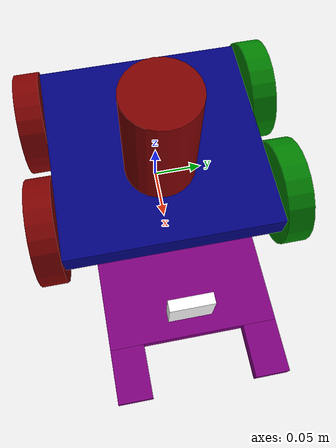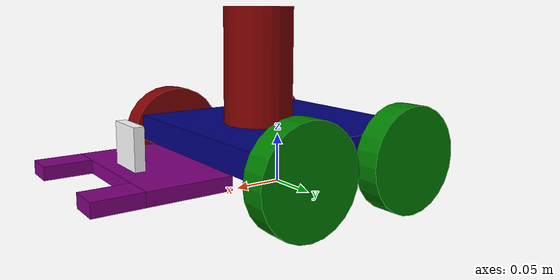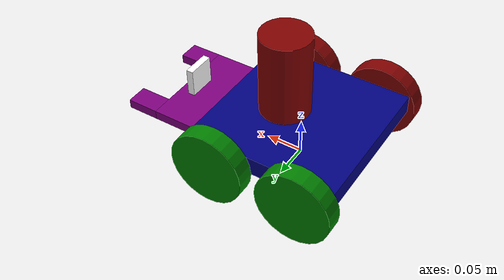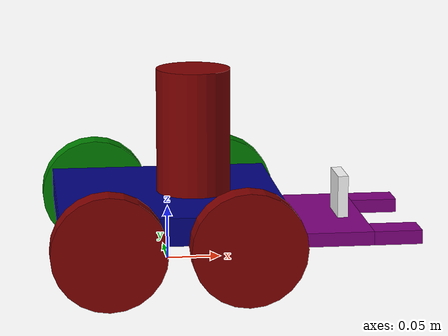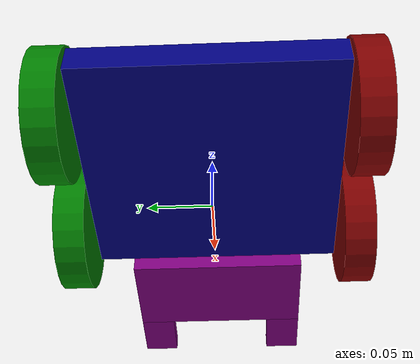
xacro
<?xml version="1.0"?>
<robot name="fetchbot" xmlns:xacro="http://www.ros.org/wiki/xacro">

    <xacro:include filename="common_properties.xacro" />
    <xacro:include filename="mobile_base.xacro" />
    <xacro:include filename="ros2_control_gazebo.xacro" />
    <xacro:include filename="lidar.xacro" />
    <xacro:include filename="claw.xacro" />
    <xacro:include filename="camera.xacro" />

</robot>

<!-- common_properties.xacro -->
<robot xmlns:xacro="http://www.ros.org/wiki/xacro">

    <xacro:property name="alpha" value="1" />

   <material name="white">
        <color rgba="1 1 1 ${alpha}"/>
    </material>

    <material name="red">
        <color rgba="0.5 0 0 ${alpha}"/>
    </material>

    <material name="green">
        <color rgba="0 0.5 0 ${alpha}"/>
    </material>

    <material name="blue">
        <color rgba="0 0 0.5 ${alpha}"/>
    </material>

    <material name="grey">
        <color rgba="0.5 0.5 0.5 ${alpha}"/>
    </material>

    <material name="purple">
        <color rgba="0.5 0 0.5 ${alpha}"/>
    </material>

    <xacro:macro name="box_inertia" params="m l w h xyz rpy">
        <inertial>
            <origin xyz="${xyz}" rpy="${rpy}" />
            <mass value="${m}" />
            <inertia ixx="${(m/12) * (h*h + l*l)}" ixy="0" ixz="0"
                     iyy="${(m/12) * (w*w + l*l)}" iyz="0"
                     izz="${(m/12) * (w*w + h*h)}" />
        </inertial>
    </xacro:macro>

    <xacro:macro name="cylinder_inertia" params="m r h xyz rpy">
        <inertial>
            <origin xyz="${xyz}" rpy="${rpy}" />
            <mass value="${m}" />
            <inertia ixx="${(m/12) * (3*r*r + h*h)}" ixy="0" ixz="0"
                     iyy="${(m/12) * (3*r*r + h*h)}" iyz="0"
                     izz="${(m/2) * (r*r)}" />
        </inertial>
    </xacro:macro>

    <xacro:macro name="sphere_inertia" params="m r xyz rpy">
        <inertial>
            <origin xyz="${xyz}" rpy="${rpy}" />
            <mass value="${m}" />
            <inertia ixx="${(2/5) * m * r * r}" ixy="0" ixz="0"
                     iyy="${(2/5) * m * r * r}" iyz="0"
                     izz="${(2/5) * m * r * r}" />
        </inertial>
    </xacro:macro>

</robot>

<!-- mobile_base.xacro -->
<robot xmlns:xacro="http://www.ros.org/wiki/xacro">

    <xacro:property name="base_length" value="0.21" />
    <xacro:property name="base_width" value="0.21" />
    <xacro:property name="base_height" value="0.026" />
    <xacro:property name="wheel_length" value="0.025" />
    <xacro:property name="wheel_radius" value="0.0525" />
    <xacro:property name="wheel_separation" value="0.125" />
    <xacro:property name="wheel_mass" value="2.0" />
    <xacro:property name="base_mass" value="10.0" />

    <link name="base_footprint"/>

    <link name="base_link">
        <visual>
            <geometry>
                <box size="${base_length} ${base_width} ${base_height}"/>
            </geometry>
            <origin xyz="0 0 ${base_height / 2.0}" rpy="0 0 0"/>
            <material name="blue"/>
        </visual>
        <collision>
            <geometry>
                <box size="${base_length} ${base_width} ${base_height}"/>
            </geometry>
            <origin xyz="0 0 ${base_height / 2.0}" rpy="0 0 0"/>
        </collision>
        <xacro:box_inertia m="${base_mass}" l="${base_length}" w="${base_width}" h="${base_height}"
                           xyz="0 0 ${base_height / 2.0}" rpy="0 0 0" />
    </link>

    <xacro:macro name="wheel_link" params="prefix color">
        <link name="${prefix}_wheel_link">
            <visual>
                <geometry>
                    <cylinder radius="${wheel_radius}" length="${wheel_length}"/>
                </geometry>
                <origin xyz="0 0 0" rpy="${pi / 2.0} 0 0"/>
                <material name="${color}"/>
            </visual>
            <collision>
                <geometry>
                    <cylinder radius="${wheel_radius}" length="${wheel_length}"/>
                </geometry>
                <origin xyz="0 0 0" rpy="${pi / 2.0} 0 0"/>
            </collision>
            <xacro:cylinder_inertia m="${wheel_mass}" r="${wheel_radius}" h="${wheel_length}"
                            xyz="0 0 0" rpy="${pi / 2.0} 0 0"/>
        </link>
    </xacro:macro>

    <xacro:wheel_link prefix="left_front" color="green" />
    <xacro:wheel_link prefix="left_back" color="green" />
    <xacro:wheel_link prefix="right_front" color="red" />
    <xacro:wheel_link prefix="right_back" color="red"/>

    <joint name="base_joint" type="fixed">
        <parent link="base_footprint"/>
        <child link="base_link"/>
        <origin xyz="0 0 ${wheel_radius - (base_height / 2.0)}" rpy="0 0 0"/>
    </joint>

    <xacro:macro name="front_wheel_joint" params="prefix1 direction1 direction2">
        <joint name="${prefix1}_front_wheel_joint" type="continuous">
            <parent link="base_link"/>
            <child link="${prefix1}_front_wheel_link"/>
            <origin xyz="${direction1 * (wheel_separation / 2.0)} ${direction2 * ((base_width + wheel_length) / 2.0)} 0" rpy="0 0 0"/>
            <axis xyz="0 1 0"/>
        </joint>
    </xacro:macro>

    <xacro:front_wheel_joint prefix1="left" direction1="1" direction2="1" />
    <xacro:front_wheel_joint prefix1="right" direction1="1" direction2="-1" />

    <xacro:macro name="back_wheel_joint" params="prefix1 direction1 direction2">
        <joint name="${prefix1}_back_wheel_joint" type="continuous">
            <parent link="base_link"/>
            <child link="${prefix1}_back_wheel_link"/>
            <origin xyz="${direction1 * (wheel_separation / 2.0)} ${direction2 * ((base_width + wheel_length) / 2.0)} 0" rpy="0 0 0"/>
            <axis xyz="0 1 0"/>
            <mimic joint="${prefix1}_front_wheel_joint" multiplier="1" offset="0"/>
        </joint>
    </xacro:macro>

    <xacro:back_wheel_joint prefix1="left" direction1="-1" direction2="1" />
    <xacro:back_wheel_joint prefix1="right" direction1="-1" direction2="-1" />

</robot>

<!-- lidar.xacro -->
<robot xmlns:xacro="http://www.ros.org/wiki/xacro">

    <xacro:property name="lidar_radius" value="0.035" />
    <xacro:property name="lidar_length" value="0.117" />

    <joint name="laser_joint" type="fixed">
        <parent link="base_link"/>
        <child link="laser_link"/>
        <origin xyz="0.025 0 ${base_height + lidar_length}" rpy="0 0 0"/>
    </joint>

    <link name="laser_link">
        <visual>
            <geometry>
                <cylinder radius="${lidar_radius}" length="${lidar_length}"/>
            </geometry>
            <material name="red"/>
            <origin xyz="0 0 ${-lidar_length / 2.0}" rpy="0 0 0" />
        </visual>
        <collision>
            <geometry>
                <cylinder radius="${lidar_radius}" length="${lidar_length}"/>
            </geometry>
        </collision>
        <xacro:cylinder_inertia m="0.1" r="${lidar_radius}" h="${lidar_length}"
                                xyz="0 0 0" rpy="0 0 0" />
    </link>

    <gazebo reference="laser_link">
        <material>Gazebo/Red</material>

        <sensor name="laser" type="ray">
            <pose> 0 0 0 0 0 0 </pose>
            <visualize>false</visualize>
            <update_rate>10</update_rate>
            <ray>
                <scan>
                    <horizontal>
                        <samples>360</samples>
                        <min_angle>-3.14</min_angle>
                        <max_angle>3.14</max_angle>
                    </horizontal>
                </scan>
                <range>
                    <min>0.15</min>
                    <max>12</max>
                </range>
            </ray>
            <plugin name="laser_controller" filename="libgazebo_ros_ray_sensor.so">
                <ros>
                    <argument>~/out:=scan</argument>
                </ros>
                <output_type>sensor_msgs/LaserScan</output_type>
                <frame_name>laser_link</frame_name>
            </plugin>
        </sensor>
    </gazebo>

</robot>

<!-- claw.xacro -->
<robot xmlns:xacro="http://www.ros.org/wiki/xacro">

    <xacro:property name="claw_length" value="0.08" />
    <xacro:property name="claw_width" value="0.15" />
    <xacro:property name="claw_height" value="0.013" />
    <xacro:property name="gripper_length" value="0.045" />
    <xacro:property name="gripper_width" value="0.03" />
    <xacro:property name="gripper_height" value="0.013" />

    <link name="claw_link">
        <visual>
            <geometry>
                <box size="${claw_length} ${claw_width} ${claw_height}" />
            </geometry>
            <material name="purple" />
        </visual>
        <collision>
            <geometry>
                <box size="${claw_length} ${claw_width} ${claw_height}" />
            </geometry>
        </collision>
        <xacro:box_inertia m="0.1" l="${claw_length}" w="${claw_width}" h="${claw_height}"
                           xyz="0 0 0" rpy="0 0 0" />
    </link>

    <link name="left_gripper_link">
        <visual>
            <geometry>
                <box size="${gripper_length} ${gripper_width} ${gripper_height}" />
            </geometry>
            <material name="purple" />
        </visual>
        <collision>
            <geometry>
                <box size="${gripper_length} ${gripper_width} ${gripper_height}" />
            </geometry>
        </collision>
        <xacro:box_inertia m="0.1" l="${gripper_length}" w="${gripper_width}" h="${gripper_height}"
                           xyz="0 0 0" rpy="0 0 0" />
    </link>

    <link name="right_gripper_link">
        <visual>
            <geometry>
                <box size="${gripper_length} ${gripper_width} ${gripper_height}" />
            </geometry>
            <material name="purple" />
        </visual>
        <collision>
            <geometry>
                <box size="${gripper_length} ${gripper_width} ${gripper_height}" />
            </geometry>
        </collision>
        <xacro:box_inertia m="0.1" l="${gripper_length}" w="${gripper_width}" h="${gripper_height}"
                           xyz="0 0 0" rpy="0 0 0" />
    </link>

    <joint name="claw_left_gripper_joint" type="fixed">
        <parent link="claw_link" />
        <child link="left_gripper_link" />
        <origin xyz="${(gripper_length + claw_length) / 2.0} ${(claw_width - gripper_width) / 2.0} 0" rpy="0 0 0" />
    </joint>

    <joint name="claw_right_gripper_joint" type="fixed">
        <parent link="claw_link" />
        <child link="right_gripper_link" />
        <origin xyz="${(gripper_length + claw_length) / 2.0} ${-(claw_width - gripper_width) / 2.0} 0" rpy="0 0 0" />
    </joint>

    <joint name="base_claw_joint" type="fixed">
        <parent link="base_link" />
        <child link="claw_link" />
        <origin xyz="${(claw_length + base_length) / 2.0} 0 ${-claw_height / 2.0}" rpy="0 0 0" />
    </joint>

</robot>

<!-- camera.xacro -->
<robot xmlns:xacro="http://www.ros.org/wiki/xacro">

    <xacro:property name="camera_length" value="0.01" />
    <xacro:property name="camera_width" value="0.04" />
    <xacro:property name="camera_height" value="0.04" />
    <xacro:property name="M_PI" value="3.1415926535897931" />

    <link name="camera_link">
        <visual>
            <geometry>
                <box size="${camera_length} ${camera_width} ${camera_height}" />
            </geometry>
            <material name="white" />
        </visual>
        <collision>
            <geometry>
                <box size="${camera_length} ${camera_width} ${camera_height}" />
            </geometry>
        </collision>
        <xacro:box_inertia m="0.1" l="${camera_length}" w="${camera_width}" h="${camera_height}"
                           xyz="0 0 0" rpy="0 0 0" />
    </link>

    <joint name="base_camera_joint" type="fixed">
        <parent link="claw_link" />
        <child link="camera_link" />
        <origin xyz="${claw_length / 4.0} 0 ${(claw_height+
         camera_height) / 2.0}" rpy="0 0 0" />
    </joint>

    <link name="camera_link_optical">
    </link>

    <joint name="camera_optical_joint" type="fixed">
        <!-- these values have to be these values otherwise the gazebo camera
            image won't be aligned properly with the frame it is supposedly
            originating from -->
        <origin xyz="0 0 0" rpy="${-pi/2} 0 ${-pi/2}"/>
        <parent link="camera_link"/>
        <child link="camera_link_optical"/>
    </joint>

    <gazebo reference="camera_link">
        <material>Gazebo/White</material>
        <sensor name="camera_sensor" type="camera">
            <update_rate>30.0</update_rate>
            <camera>
                <pose>0 0 0 0 -0.05 0</pose>
                <horizontal_fov>${45 * M_PI/180.0}</horizontal_fov>
                <image>
                    <width>640</width>
                    <height>480</height>
                </image>
                <clip>
                    <near>0.01</near>
                    <far>100</far>
                </clip>
            </camera>
            <plugin name="camera_controller" filename="libgazebo_ros_camera.so">
                <alwaysOn>true</alwaysOn>
                <updateRate>0.0</updateRate>
                <frame_name>camera_link_optical</frame_name>
            </plugin>
        </sensor>
    </gazebo>

</robot>
